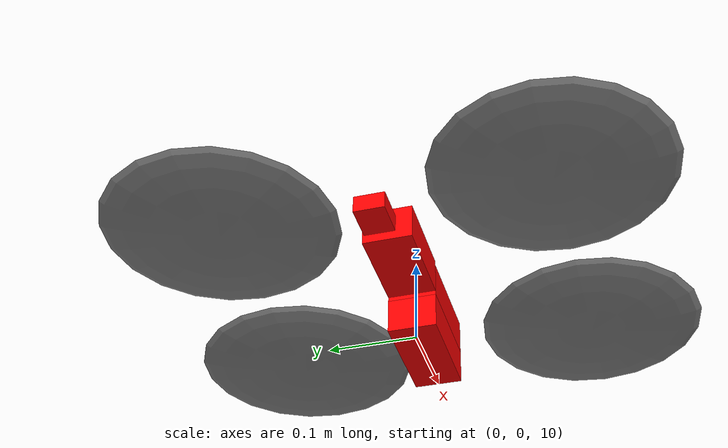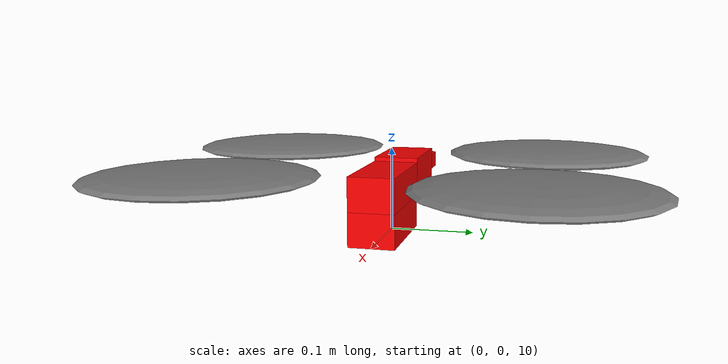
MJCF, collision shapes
<!-- core/LowLevel/Assets/skydio_X2/assets/Quadrotor.xml -->
<mujoco model="Skydio X2">
  <compiler autolimits="true" assetdir="assets"/>

  <option timestep="0.005" integrator="implicit" density="1.225" viscosity="1.8e-5" wind="0 0 0"/>

  <default>
    <default class="x2">
      <geom mass="0"/>
      <motor ctrlrange="0 13"/>
      <mesh scale="0.01 0.01 0.01"/>
      <default class="visual">
        <geom group="2" type="mesh" contype="0" conaffinity="0"/>
      </default>
      <default class="collision">
        <geom group="3" type="box"/>
        <default class="rotor">
          <geom type="ellipsoid" size=".13 .13 .01"/>
        </default>
      </default>
      <site group="5"/>
    </default>
  </default>

  <asset>
    <texture type="2d" file="X2_lowpoly_texture_SpinningProps_1024.png"/>
    <material name="phong3SG" texture="X2_lowpoly_texture_SpinningProps_1024"/>
    <material name="invisible" rgba="0 0 0 0"/>
    <mesh class="x2" file="X2_lowpoly.obj"/>
  </asset>

  <worldbody>
    <light name="spotlight" mode="targetbodycom" target="Quadrotor" pos="0 -1 2"/>

    <body name="Quadrotor" pos="0 0 10" childclass="x2">
      <freejoint/>
      <camera name="track" pos="0 0 5" mode="trackcom"/>
      <camera name="bottom_cam" pos="0 0 -0.05" mode="trackcom"/>

      <geom material="phong3SG" mesh="X2_lowpoly" class="visual" quat="0 0 1 1"/>

      <geom class="collision" size=".06 .027 .02" pos=".04 0 .02" friction="2.0 1.0 0.05" margin="0.01"
            solref="0.002 1.0" solimp="0.90 0.95 0.002" rgba="1 0 0 0.5"/>
      <geom class="collision" size=".06 .027 .02" pos=".04 0 .06" friction="2.0 1.0 0.05" margin="0.01"
            solref="0.002 1.0" solimp="0.90 0.95 0.002" rgba="1 0 0 0.5"/>
      <geom class="collision" size=".05 .027 .02" pos="-.07 0 .065" friction="2.0 1.0 0.05" margin="0.01"
            solref="0.002 1.0" solimp="0.90 0.95 0.002" rgba="1 0 0 0.5"/>
      <geom class="collision" size=".023 .017 .01" pos="-.137 .008 .065" friction="2.0 1.0 0.05" margin="0.01"
            solref="0.002 1.0" solimp="0.90 0.95 0.002" rgba="1 0 0 0.5"/>

      <geom name="rotor1" class="rotor" pos="-.14 -.18 .08" mass=".25"/>
      <geom name="rotor2" class="rotor" pos="-.14 .18 .08" mass=".25"/>
      <geom name="rotor3" class="rotor" pos=".14 .18 .08" mass=".25"/>
      <geom name="rotor4" class="rotor" pos=".14 -.18 .08" mass=".25"/>
      <geom size=".16 .04 .02" pos="0 0 0.02" type="ellipsoid" mass=".325" class="visual" material="invisible"/>

      <site name="thrust1" pos="-.14 -.18 .08"/>
      <site name="thrust2" pos="-.14 .18 .08"/>
      <site name="thrust3" pos=".14 .18 .08"/>
      <site name="thrust4" pos=".14 -.18 .08"/>

      <site name="Quadrotor_site_gps" pos="0 0 0.03" size="0.002"/>
      <site name="Quadrotor_site_imu" pos="0 0 0.02"/>
      <site name="Quadrotor_site_rangefinder" pos="0 0 0" quat="0 1 0 0" size="0.002" rgba="1 1 1 0"/>
    </body>
  </worldbody>

  <actuator>
    <motor name="thrust1" site="thrust1" gear="0 0 1  1  1  1" ctrllimited="true" ctrlrange="0 4"/>
    <motor name="thrust2" site="thrust2" gear="0 0 1 -1  1 -1" ctrllimited="true" ctrlrange="0 4"/>
    <motor name="thrust3" site="thrust3" gear="0 0 1 -1 -1  1" ctrllimited="true" ctrlrange="0 4"/>
    <motor name="thrust4" site="thrust4" gear="0 0 1  1 -1 -1" ctrllimited="true" ctrlrange="0 4"/>
  </actuator>

  <sensor>
    <framepos name="Quadrotor_framepos" objtype="site" objname="Quadrotor_site_gps"/>
    <velocimeter name="Quadrotor_velocimeter" site="Quadrotor_site_gps"/>
  </sensor>

  <sensor>
    <framequat name="Quadrotor_framequat" objtype="site" objname="Quadrotor_site_imu"/>
    <gyro name="Quadrotor_gyro" site="Quadrotor_site_imu"/>
    <accelerometer name="Quadrotor_accelerometer" site="Quadrotor_site_imu"/>
  </sensor>

  <sensor>
    <rangefinder name="Quadrotor_rangefinder" site="Quadrotor_site_rangefinder"/>
  </sensor>

</mujoco>
